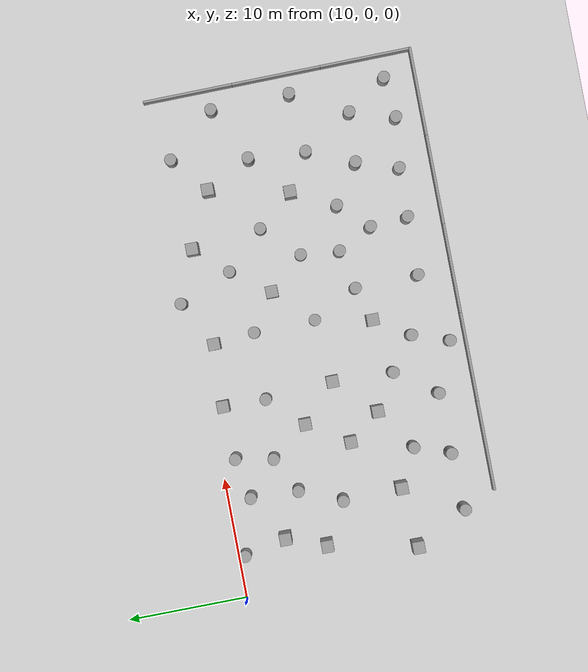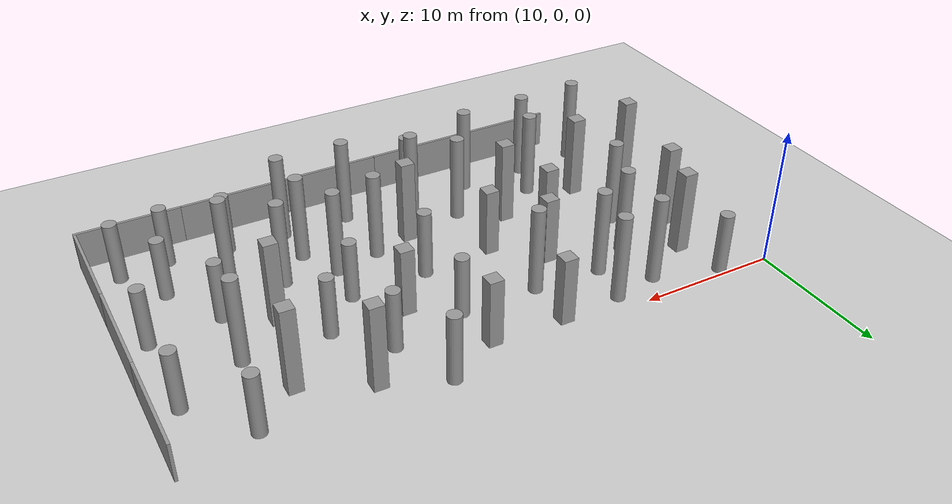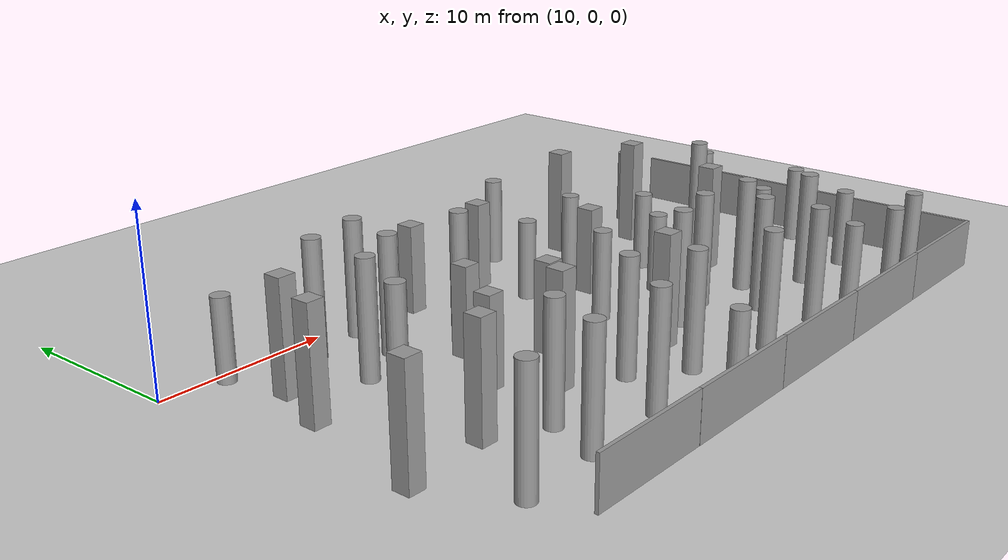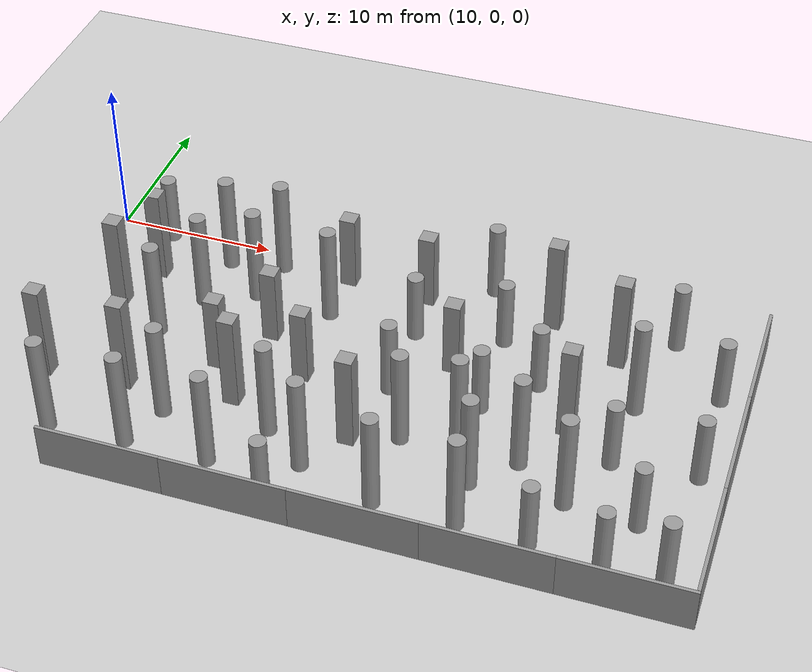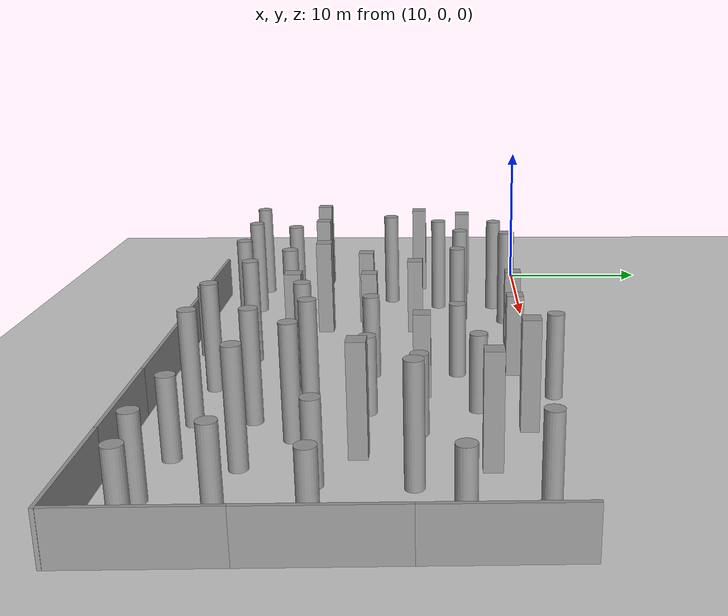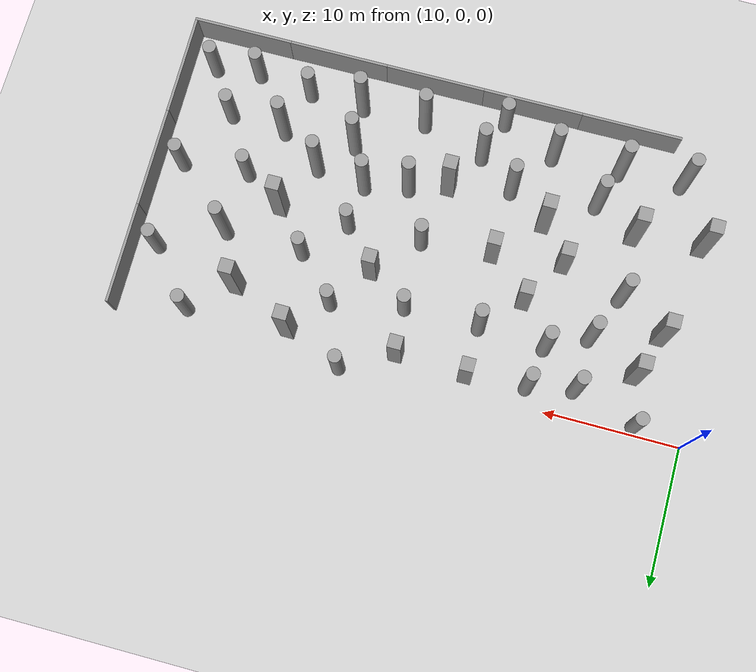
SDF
<sdf version="1.7">
 <world name="default">
  <model name="ground_plane">
   <static>1</static>
   <link name="link">
    <collision name="collision">
     <geometry><plane><normal>0 0 1</normal><size>400 400</size></plane></geometry>
     <surface><friction><ode><mu>100</mu><mu2>50</mu2></ode></friction></surface>
    </collision>
    <visual name="visual">
     <cast_shadows>0</cast_shadows>
     <geometry><plane><normal>0 0 1</normal><size>100 100</size></plane></geometry>
     <material>
      <script><uri>file://media/materials/scripts/gazebo.material</uri><name>Gazebo/Grey</name></script>
     </material>
    </visual>
   </link>
  </model>
  <model name="unit_cylinder_27_clone_8">
   <pose>36.8795 -3.70449 2.257 2e-06 0 -0.000726</pose>
   <link name="link">
    <inertial>
     <mass>1</mass>
     <inertia><ixx>0.145833</ixx><ixy>0</ixy><ixz>0</ixz><iyy>0.145833</iyy><iyz>0</iyz><izz>0.125</izz></inertia>
    </inertial>
    <collision name="collision">
     <geometry><cylinder><radius>0.5</radius><length>4.51407</length></cylinder></geometry>
    </collision>
    <visual name="visual">
     <geometry><cylinder><radius>0.5</radius><length>4.51407</length></cylinder></geometry>
     <material>
      <script><name>Gazebo/Grey</name><uri>file://media/materials/scripts/gazebo.material</uri></script>
     </material>
    </visual>
   </link>
  </model>
  <model name="unit_cylinder_27_clone_9">
   <pose>37.1597 -9.74418 2.257 2e-06 -0 -0.000727</pose>
   <link name="link">
    <inertial>
     <mass>1</mass>
     <inertia><ixx>0.145833</ixx><ixy>0</ixy><ixz>0</ixz><iyy>0.145833</iyy><iyz>0</iyz><izz>0.125</izz></inertia>
    </inertial>
    <collision name="collision">
     <geometry><cylinder><radius>0.5</radius><length>4.51407</length></cylinder></geometry>
    </collision>
    <visual name="visual">
     <geometry><cylinder><radius>0.5</radius><length>4.51407</length></cylinder></geometry>
     <material>
      <script><name>Gazebo/Grey</name><uri>file://media/materials/scripts/gazebo.material</uri></script>
     </material>
    </visual>
   </link>
  </model>
  <model name="unit_cylinder_27_clone_10">
   <pose>31.5623 -4.75748 2.257 2e-06 0 -0.000706</pose>
   <link name="link">
    <inertial>
     <mass>1</mass>
     <inertia><ixx>0.145833</ixx><ixy>0</ixy><ixz>0</ixz><iyy>0.145833</iyy><iyz>0</iyz><izz>0.125</izz></inertia>
    </inertial>
    <collision name="collision">
     <geometry><cylinder><radius>0.5</radius><length>4.51407</length></cylinder></geometry>
    </collision>
    <visual name="visual">
     <geometry><cylinder><radius>0.5</radius><length>4.51407</length></cylinder></geometry>
     <material>
      <script><name>Gazebo/Grey</name><uri>file://media/materials/scripts/gazebo.material</uri></script>
     </material>
    </visual>
   </link>
  </model>
  <model name="unit_cylinder_27_clone_11">
   <pose>39.891 -6.87466 2.257 2e-06 -0 -0.000742</pose>
   <link name="link">
    <inertial>
     <mass>1</mass>
     <inertia><ixx>0.145833</ixx><ixy>0</ixy><ixz>0</ixz><iyy>0.145833</iyy><iyz>0</iyz><izz>0.125</izz></inertia>
    </inertial>
    <collision name="collision">
     <geometry><cylinder><radius>0.5</radius><length>4.51407</length></cylinder></geometry>
    </collision>
    <visual name="visual">
     <geometry><cylinder><radius>0.5</radius><length>4.51407</length></cylinder></geometry>
     <material>
      <script><name>Gazebo/Grey</name><uri>file://media/materials/scripts/gazebo.material</uri></script>
     </material>
    </visual>
   </link>
  </model>
  <model name="unit_box_8_clone">
   <pose>39.2587 -1.07295 3.10477 0 1e-06 -0.011993</pose>
   <link name="link">
    <inertial>
     <mass>1</mass>
     <inertia>
      <ixx>0.166667</ixx>
      <ixy>0</ixy>
      <ixz>0</ixz>
      <iyy>0.166667</iyy>
      <iyz>0</iyz>
      <izz>0.166667</izz>
     </inertia>
    </inertial>
    <collision name="collision"><geometry><box><size>1 1 6.20954</size></box></geometry></collision>
    <visual name="visual">
     <geometry><box><size>1 1 6.20954</size></box></geometry>
     <material>
      <script><name>Gazebo/Grey</name><uri>file://media/materials/scripts/gazebo.material</uri></script>
     </material>
    </visual>
   </link>
  </model>
  <model name="unit_box_8_clone_0">
   <pose>43.8059 -3.23967 3.10477 -2e-06 5e-06 -0.008215</pose>
   <link name="link">
    <inertial>
     <mass>1</mass>
     <inertia>
      <ixx>0.166667</ixx>
      <ixy>0</ixy>
      <ixz>0</ixz>
      <iyy>0.166667</iyy>
      <iyz>0</iyz>
      <izz>0.166667</izz>
     </inertia>
    </inertial>
    <collision name="collision"><geometry><box><size>1 1 6.20954</size></box></geometry></collision>
    <visual name="visual">
     <geometry><box><size>1 1 6.20954</size></box></geometry>
     <material>
      <script><name>Gazebo/Grey</name><uri>file://media/materials/scripts/gazebo.material</uri></script>
     </material>
    </visual>
   </link>
  </model>
  <model name="unit_box_8_clone_3">
   <pose>42.3824 -9.85764 3.10477 0 -1e-06 -0.007014</pose>
   <link name="link">
    <inertial>
     <mass>1</mass>
     <inertia>
      <ixx>0.166667</ixx>
      <ixy>0</ixy>
      <ixz>0</ixz>
      <iyy>0.166667</iyy>
      <iyz>0</iyz>
      <izz>0.166667</izz>
     </inertia>
    </inertial>
    <collision name="collision"><geometry><box><size>1 1 6.20954</size></box></geometry></collision>
    <visual name="visual">
     <geometry><box><size>1 1 6.20954</size></box></geometry>
     <material>
      <script><name>Gazebo/Grey</name><uri>file://media/materials/scripts/gazebo.material</uri></script>
     </material>
    </visual>
   </link>
  </model>
  <model name="unit_box_8_clone_15">
   <pose>11.6994 -14.7229 3.10477 0 -5e-06 -0.008049</pose>
   <link name="link">
    <inertial>
     <mass>1</mass>
     <inertia>
      <ixx>0.166667</ixx>
      <ixy>0</ixy>
      <ixz>0</ixz>
      <iyy>0.166667</iyy>
      <iyz>0</iyz>
      <izz>0.166667</izz>
     </inertia>
    </inertial>
    <collision name="collision"><geometry><box><size>1 1 6.20954</size></box></geometry></collision>
    <visual name="visual">
     <geometry><box><size>1 1 6.20954</size></box></geometry>
     <material>
      <script><name>Gazebo/Grey</name><uri>file://media/materials/scripts/gazebo.material</uri></script>
     </material>
    </visual>
   </link>
  </model>
  <model name="unit_box_8_clone_16">
   <pose>16.7136 -14.2873 3.10477 2e-06 -5e-06 -0.009424</pose>
   <link name="link">
    <inertial>
     <mass>1</mass>
     <inertia>
      <ixx>0.166667</ixx>
      <ixy>0</ixy>
      <ixz>0</ixz>
      <iyy>0.166667</iyy>
      <iyz>0</iyz>
      <izz>0.166667</izz>
     </inertia>
    </inertial>
    <collision name="collision"><geometry><box><size>1 1 6.20954</size></box></geometry></collision>
    <visual name="visual">
     <geometry><box><size>1 1 6.20954</size></box></geometry>
     <material>
      <script><name>Gazebo/Grey</name><uri>file://media/materials/scripts/gazebo.material</uri></script>
     </material>
    </visual>
   </link>
  </model>
  <model name="unit_box_8_clone_17">
   <pose>23.2821 -13.5423 3.10477 1e-06 0 -0.007486</pose>
   <link name="link">
    <inertial>
     <mass>1</mass>
     <inertia>
      <ixx>0.166667</ixx>
      <ixy>0</ixy>
      <ixz>0</ixz>
      <iyy>0.166667</iyy>
      <iyz>0</iyz>
      <izz>0.166667</izz>
     </inertia>
    </inertial>
    <collision name="collision"><geometry><box><size>1 1 6.20954</size></box></geometry></collision>
    <visual name="visual">
     <geometry><box><size>1 1 6.20954</size></box></geometry>
     <material>
      <script><name>Gazebo/Grey</name><uri>file://media/materials/scripts/gazebo.material</uri></script>
     </material>
    </visual>
   </link>
  </model>
  <model name="unit_box_8_clone_18">
   <pose>30.7532 -14.5438 3.10477 2e-06 -5e-06 -0.009418</pose>
   <link name="link">
    <inertial>
     <mass>1</mass>
     <inertia>
      <ixx>0.166667</ixx>
      <ixy>0</ixy>
      <ixz>0</ixz>
      <iyy>0.166667</iyy>
      <iyz>0</iyz>
      <izz>0.166667</izz>
     </inertia>
    </inertial>
    <collision name="collision"><geometry><box><size>1 1 6.20954</size></box></geometry></collision>
    <visual name="visual">
     <geometry><box><size>1 1 6.20954</size></box></geometry>
     <material>
      <script><name>Gazebo/Grey</name><uri>file://media/materials/scripts/gazebo.material</uri></script>
     </material>
    </visual>
   </link>
  </model>
  <model name="unit_cylinder_17_clone_0">
   <pose>26.1992 -15.3901 3.23034 3e-06 -1e-06 0.007121</pose>
   <link name="link">
    <inertial>
     <mass>1</mass>
     <inertia><ixx>0.145833</ixx><ixy>0</ixy><ixz>0</ixz><iyy>0.145833</iyy><iyz>0</iyz><izz>0.125</izz></inertia>
    </inertial>
    <collision name="collision">
     <geometry><cylinder><radius>0.5</radius><length>6.46075</length></cylinder></geometry>
    </collision>
    <visual name="visual">
     <geometry><cylinder><radius>0.5</radius><length>6.46075</length></cylinder></geometry>
     <material>
      <script><name>Gazebo/Grey</name><uri>file://media/materials/scripts/gazebo.material</uri></script>
     </material>
    </visual>
   </link>
  </model>
  <model name="unit_cylinder_17_clone_1">
   <pose>19.8231 -15.8838 3.23034 3e-06 -1e-06 0.007124</pose>
   <link name="link">
    <inertial>
     <mass>1</mass>
     <inertia><ixx>0.145833</ixx><ixy>0</ixy><ixz>0</ixz><iyy>0.145833</iyy><iyz>0</iyz><izz>0.125</izz></inertia>
    </inertial>
    <collision name="collision">
     <geometry><cylinder><radius>0.5</radius><length>6.46075</length></cylinder></geometry>
    </collision>
    <visual name="visual">
     <geometry><cylinder><radius>0.5</radius><length>6.46075</length></cylinder></geometry>
     <material>
      <script><name>Gazebo/Grey</name><uri>file://media/materials/scripts/gazebo.material</uri></script>
     </material>
    </visual>
   </link>
  </model>
  <model name="unit_cylinder_17_clone_3">
   <pose>40.5461 -13.4182 3.23034 3e-06 -1e-06 0.007107</pose>
   <link name="link">
    <inertial>
     <mass>1</mass>
     <inertia><ixx>0.145833</ixx><ixy>0</ixy><ixz>0</ixz><iyy>0.145833</iyy><iyz>0</iyz><izz>0.125</izz></inertia>
    </inertial>
    <collision name="collision">
     <geometry><cylinder><radius>0.5</radius><length>6.46075</length></cylinder></geometry>
    </collision>
    <visual name="visual">
     <geometry><cylinder><radius>0.5</radius><length>6.46075</length></cylinder></geometry>
     <material>
      <script><name>Gazebo/Grey</name><uri>file://media/materials/scripts/gazebo.material</uri></script>
     </material>
    </visual>
   </link>
  </model>
  <model name="unit_cylinder_17_clone_4">
   <pose>14.0195 -19.0586 3.23034 3e-06 -1e-06 0.007104</pose>
   <link name="link">
    <inertial>
     <mass>1</mass>
     <inertia><ixx>0.145833</ixx><ixy>0</ixy><ixz>0</ixz><iyy>0.145833</iyy><iyz>0</iyz><izz>0.125</izz></inertia>
    </inertial>
    <collision name="collision">
     <geometry><cylinder><radius>0.5</radius><length>6.46075</length></cylinder></geometry>
    </collision>
    <visual name="visual">
     <geometry><cylinder><radius>0.5</radius><length>6.46075</length></cylinder></geometry>
     <material>
      <script><name>Gazebo/Grey</name><uri>file://media/materials/scripts/gazebo.material</uri></script>
     </material>
    </visual>
   </link>
  </model>
  <model name="unit_cylinder_17_clone_5">
   <pose>18.7577 -18.835 3.23034 3e-06 -1e-06 0.007073</pose>
   <link name="link">
    <inertial>
     <mass>1</mass>
     <inertia><ixx>0.145833</ixx><ixy>0</ixy><ixz>0</ixz><iyy>0.145833</iyy><iyz>0</iyz><izz>0.125</izz></inertia>
    </inertial>
    <collision name="collision">
     <geometry><cylinder><radius>0.5</radius><length>6.46075</length></cylinder></geometry>
    </collision>
    <visual name="visual">
     <geometry><cylinder><radius>0.5</radius><length>6.46075</length></cylinder></geometry>
     <material>
      <script><name>Gazebo/Grey</name><uri>file://media/materials/scripts/gazebo.material</uri></script>
     </material>
    </visual>
   </link>
  </model>
  <model name="unit_cylinder_17_clone_6">
   <pose>23.8153 -18.7641 3.23034 3e-06 -1e-06 0.007075</pose>
   <link name="link">
    <inertial>
     <mass>1</mass>
     <inertia><ixx>0.145833</ixx><ixy>0</ixy><ixz>0</ixz><iyy>0.145833</iyy><iyz>0</iyz><izz>0.125</izz></inertia>
    </inertial>
    <collision name="collision">
     <geometry><cylinder><radius>0.5</radius><length>6.46075</length></cylinder></geometry>
    </collision>
    <visual name="visual">
     <geometry><cylinder><radius>0.5</radius><length>6.46075</length></cylinder></geometry>
     <material>
      <script><name>Gazebo/Grey</name><uri>file://media/materials/scripts/gazebo.material</uri></script>
     </material>
    </visual>
   </link>
  </model>
  <model name="unit_cylinder_17_clone_7">
   <pose>28.9284 -17.4482 3.23034 3e-06 -1e-06 0.00708</pose>
   <link name="link">
    <inertial>
     <mass>1</mass>
     <inertia><ixx>0.145833</ixx><ixy>0</ixy><ixz>0</ixz><iyy>0.145833</iyy><iyz>0</iyz><izz>0.125</izz></inertia>
    </inertial>
    <collision name="collision">
     <geometry><cylinder><radius>0.5</radius><length>6.46075</length></cylinder></geometry>
    </collision>
    <visual name="visual">
     <geometry><cylinder><radius>0.5</radius><length>6.46075</length></cylinder></geometry>
     <material>
      <script><name>Gazebo/Grey</name><uri>file://media/materials/scripts/gazebo.material</uri></script>
     </material>
    </visual>
   </link>
  </model>
  <model name="unit_cylinder_17_clone_8">
   <pose>33.688 -18.8972 3.23034 3e-06 -1e-06 0.007062</pose>
   <link name="link">
    <inertial>
     <mass>1</mass>
     <inertia><ixx>0.145833</ixx><ixy>0</ixy><ixz>0</ixz><iyy>0.145833</iyy><iyz>0</iyz><izz>0.125</izz></inertia>
    </inertial>
    <collision name="collision">
     <geometry><cylinder><radius>0.5</radius><length>6.46075</length></cylinder></geometry>
    </collision>
    <visual name="visual">
     <geometry><cylinder><radius>0.5</radius><length>6.46075</length></cylinder></geometry>
     <material>
      <script><name>Gazebo/Grey</name><uri>file://media/materials/scripts/gazebo.material</uri></script>
     </material>
    </visual>
   </link>
  </model>
  <model name="unit_cylinder_17_clone_9">
   <pose>33.5789 -13.6377 3.23034 3e-06 -1e-06 0.007064</pose>
   <link name="link">
    <inertial>
     <mass>1</mass>
     <inertia><ixx>0.145833</ixx><ixy>0</ixy><ixz>0</ixz><iyy>0.145833</iyy><iyz>0</iyz><izz>0.125</izz></inertia>
    </inertial>
    <collision name="collision">
     <geometry><cylinder><radius>0.5</radius><length>6.46075</length></cylinder></geometry>
    </collision>
    <visual name="visual">
     <geometry><cylinder><radius>0.5</radius><length>6.46075</length></cylinder></geometry>
     <material>
      <script><name>Gazebo/Grey</name><uri>file://media/materials/scripts/gazebo.material</uri></script>
     </material>
    </visual>
   </link>
  </model>
  <model name="unit_cylinder_17_clone_10">
   <pose>38.3088 -15.8097 3.23034 3e-06 -1e-06 0.007047</pose>
   <link name="link">
    <inertial>
     <mass>1</mass>
     <inertia><ixx>0.145833</ixx><ixy>0</ixy><ixz>0</ixz><iyy>0.145833</iyy><iyz>0</iyz><izz>0.125</izz></inertia>
    </inertial>
    <collision name="collision">
     <geometry><cylinder><radius>0.5</radius><length>6.46075</length></cylinder></geometry>
    </collision>
    <visual name="visual">
     <geometry><cylinder><radius>0.5</radius><length>6.46075</length></cylinder></geometry>
     <material>
      <script><name>Gazebo/Grey</name><uri>file://media/materials/scripts/gazebo.material</uri></script>
     </material>
    </visual>
   </link>
  </model>
  <model name="unit_cylinder_17_clone_2">
   <pose>36.8202 -12.9403 3.23034 3e-06 -1e-06 0.007012</pose>
   <link name="link">
    <inertial>
     <mass>1</mass>
     <inertia><ixx>0.145833</ixx><ixy>0</ixy><ixz>0</ixz><iyy>0.145833</iyy><iyz>0</iyz><izz>0.125</izz></inertia>
    </inertial>
    <collision name="collision">
     <geometry><cylinder><radius>0.5</radius><length>6.46075</length></cylinder></geometry>
    </collision>
    <visual name="visual">
     <geometry><cylinder><radius>0.5</radius><length>6.46075</length></cylinder></geometry>
     <material>
      <script><name>Gazebo/Grey</name><uri>file://media/materials/scripts/gazebo.material</uri></script>
     </material>
    </visual>
   </link>
  </model>
  <model name="unit_cylinder_17_clone_11">
   <pose>38.5353 -18.9509 3.23034 3e-06 -1e-06 0.00717</pose>
   <link name="link">
    <inertial>
     <mass>1</mass>
     <inertia><ixx>0.145833</ixx><ixy>0</ixy><ixz>0</ixz><iyy>0.145833</iyy><iyz>0</iyz><izz>0.125</izz></inertia>
    </inertial>
    <collision name="collision">
     <geometry><cylinder><radius>0.5</radius><length>6.46075</length></cylinder></geometry>
    </collision>
    <visual name="visual">
     <geometry><cylinder><radius>0.5</radius><length>6.46075</length></cylinder></geometry>
     <material>
      <script><name>Gazebo/Grey</name><uri>file://media/materials/scripts/gazebo.material</uri></script>
     </material>
    </visual>
   </link>
  </model>
  <model name="unit_cylinder_17_clone_12">
   <pose>43.7372 -15.5968 3.23034 3e-06 -1e-06 0.007173</pose>
   <link name="link">
    <inertial>
     <mass>1</mass>
     <inertia><ixx>0.145833</ixx><ixy>0</ixy><ixz>0</ixz><iyy>0.145833</iyy><iyz>0</iyz><izz>0.125</izz></inertia>
    </inertial>
    <collision name="collision">
     <geometry><cylinder><radius>0.5</radius><length>6.46075</length></cylinder></geometry>
    </collision>
    <visual name="visual">
     <geometry><cylinder><radius>0.5</radius><length>6.46075</length></cylinder></geometry>
     <material>
      <script><name>Gazebo/Grey</name><uri>file://media/materials/scripts/gazebo.material</uri></script>
     </material>
    </visual>
   </link>
  </model>
  <model name="unit_cylinder_17_clone_13">
   <pose>45.7275 -6.98851 3.23034 3e-06 -1e-06 0.007178</pose>
   <link name="link">
    <inertial>
     <mass>1</mass>
     <inertia><ixx>0.145833</ixx><ixy>0</ixy><ixz>0</ixz><iyy>0.145833</iyy><iyz>0</iyz><izz>0.125</izz></inertia>
    </inertial>
    <collision name="collision">
     <geometry><cylinder><radius>0.5</radius><length>6.46075</length></cylinder></geometry>
    </collision>
    <visual name="visual">
     <geometry><cylinder><radius>0.5</radius><length>6.46075</length></cylinder></geometry>
     <material>
      <script><name>Gazebo/Grey</name><uri>file://media/materials/scripts/gazebo.material</uri></script>
     </material>
    </visual>
   </link>
  </model>
  <model name="unit_cylinder_17_clone_14">
   <pose>25.9964 -4.68182 3.23034 3e-06 -1e-06 0.007158</pose>
   <link name="link">
    <inertial>
     <mass>1</mass>
     <inertia><ixx>0.145833</ixx><ixy>0</ixy><ixz>0</ixz><iyy>0.145833</iyy><iyz>0</iyz><izz>0.125</izz></inertia>
    </inertial>
    <collision name="collision">
     <geometry><cylinder><radius>0.5</radius><length>6.46075</length></cylinder></geometry>
    </collision>
    <visual name="visual">
     <geometry><cylinder><radius>0.5</radius><length>6.46075</length></cylinder></geometry>
     <material>
      <script><name>Gazebo/Grey</name><uri>file://media/materials/scripts/gazebo.material</uri></script>
     </material>
    </visual>
   </link>
  </model>
  <model name="grey_wall_clone_0">
   <static>1</static>
   <link name="link">
    <pose>0 0 1.4 0 -0 0</pose>
    <collision name="collision"><geometry><box><size>7.5 0.2 2.8</size></box></geometry></collision>
    <visual name="visual">
     <cast_shadows>0</cast_shadows>
     <geometry><box><size>7.5 0.2 2.8</size></box></geometry>
     <material>
      <script>
       <uri>model://grey_wall/materials/scripts</uri>
       <uri>model://grey_wall/materials/textures</uri>
       <name>vrc/grey_wall</name>
      </script>
     </material>
    </visual>
   </link>
   <pose>18.7458 -21.8498 0 0 -0 0</pose>
  </model>
  <model name="grey_wall_clone_1">
   <static>1</static>
   <link name="link">
    <pose>0 0 1.4 0 -0 0</pose>
    <collision name="collision"><geometry><box><size>7.5 0.2 2.8</size></box></geometry></collision>
    <visual name="visual">
     <cast_shadows>0</cast_shadows>
     <geometry><box><size>7.5 0.2 2.8</size></box></geometry>
     <material>
      <script>
       <uri>model://grey_wall/materials/scripts</uri>
       <uri>model://grey_wall/materials/textures</uri>
       <name>vrc/grey_wall</name>
      </script>
     </material>
    </visual>
   </link>
   <pose>26.227 -21.8579 0 0 -0 0</pose>
  </model>
  <model name="grey_wall_clone_2">
   <static>1</static>
   <link name="link">
    <pose>0 0 1.4 0 -0 0</pose>
    <collision name="collision"><geometry><box><size>7.5 0.2 2.8</size></box></geometry></collision>
    <visual name="visual">
     <cast_shadows>0</cast_shadows>
     <geometry><box><size>7.5 0.2 2.8</size></box></geometry>
     <material>
      <script>
       <uri>model://grey_wall/materials/scripts</uri>
       <uri>model://grey_wall/materials/textures</uri>
       <name>vrc/grey_wall</name>
      </script>
     </material>
    </visual>
   </link>
   <pose>33.693 -21.8618 0 0 -0 0</pose>
  </model>
  <model name="grey_wall_clone_3">
   <static>1</static>
   <link name="link">
    <pose>0 0 1.4 0 -0 0</pose>
    <collision name="collision"><geometry><box><size>7.5 0.2 2.8</size></box></geometry></collision>
    <visual name="visual">
     <cast_shadows>0</cast_shadows>
     <geometry><box><size>7.5 0.2 2.8</size></box></geometry>
     <material>
      <script>
       <uri>model://grey_wall/materials/scripts</uri>
       <uri>model://grey_wall/materials/textures</uri>
       <name>vrc/grey_wall</name>
      </script>
     </material>
    </visual>
   </link>
   <pose>41.1808 -21.8627 0 0 -0 0</pose>
  </model>
  <model name="grey_wall_clone_4">
   <static>1</static>
   <link name="link">
    <pose>0 0 1.4 0 -0 0</pose>
    <collision name="collision"><geometry><box><size>7.5 0.2 2.8</size></box></geometry></collision>
    <visual name="visual">
     <cast_shadows>0</cast_shadows>
     <geometry><box><size>7.5 0.2 2.8</size></box></geometry>
     <material>
      <script>
       <uri>model://grey_wall/materials/scripts</uri>
       <uri>model://grey_wall/materials/textures</uri>
       <name>vrc/grey_wall</name>
      </script>
     </material>
    </visual>
   </link>
   <pose>48.6085 -21.8641 0 0 -0 0</pose>
  </model>
  <model name="grey_wall_clone_6">
   <static>1</static>
   <link name="link">
    <pose>0 0 1.4 0 -0 0</pose>
    <collision name="collision"><geometry><box><size>7.5 0.2 2.8</size></box></geometry></collision>
    <visual name="visual">
     <cast_shadows>0</cast_shadows>
     <geometry><box><size>7.5 0.2 2.8</size></box></geometry>
     <material>
      <script>
       <uri>model://grey_wall/materials/scripts</uri>
       <uri>model://grey_wall/materials/textures</uri>
       <name>vrc/grey_wall</name>
      </script>
     </material>
    </visual>
   </link>
   <pose>52.2126 -18.0115 0 0 0 -1.56033</pose>
  </model>
  <model name="grey_wall_clone_6_clone">
   <static>1</static>
   <link name="link">
    <pose>0 0 1.4 0 -0 0</pose>
    <collision name="collision"><geometry><box><size>7.5 0.2 2.8</size></box></geometry></collision>
    <visual name="visual">
     <cast_shadows>0</cast_shadows>
     <geometry><box><size>7.5 0.2 2.8</size></box></geometry>
     <material>
      <script>
       <uri>model://grey_wall/materials/scripts</uri>
       <uri>model://grey_wall/materials/textures</uri>
       <name>vrc/grey_wall</name>
      </script>
     </material>
    </visual>
   </link>
   <pose>52.1345 -10.5567 0 0 0 -1.56033</pose>
  </model>
  <model name="grey_wall_clone_6_clone_0">
   <static>1</static>
   <link name="link">
    <pose>0 0 1.4 0 -0 0</pose>
    <collision name="collision"><geometry><box><size>7.5 0.2 2.8</size></box></geometry></collision>
    <visual name="visual">
     <cast_shadows>0</cast_shadows>
     <geometry><box><size>7.5 0.2 2.8</size></box></geometry>
     <material>
      <script>
       <uri>model://grey_wall/materials/scripts</uri>
       <uri>model://grey_wall/materials/textures</uri>
       <name>vrc/grey_wall</name>
      </script>
     </material>
    </visual>
   </link>
   <pose>52.0596 -3.06757 0 0 0 -1.56033</pose>
  </model>
  <model name="unit_cylinder_27_clone_7_clone">
   <pose>46.8503 -0.691052 2.257 2e-06 0 -0.00073</pose>
   <link name="link">
    <inertial>
     <mass>1</mass>
     <inertia><ixx>0.145833</ixx><ixy>0</ixy><ixz>0</ixz><iyy>0.145833</iyy><iyz>0</iyz><izz>0.125</izz></inertia>
    </inertial>
    <collision name="collision">
     <geometry><cylinder><radius>0.5</radius><length>4.51407</length></cylinder></geometry>
    </collision>
    <visual name="visual">
     <geometry><cylinder><radius>0.5</radius><length>4.51407</length></cylinder></geometry>
     <material>
      <script><name>Gazebo/Grey</name><uri>file://media/materials/scripts/gazebo.material</uri></script>
     </material>
    </visual>
   </link>
  </model>
  <model name="unit_cylinder_27_clone_7_clone_0">
   <pose>50.2933 -4.71385 2.257 2e-06 -0 -0.000732</pose>
   <link name="link">
    <inertial>
     <mass>1</mass>
     <inertia><ixx>0.145833</ixx><ixy>0</ixy><ixz>0</ixz><iyy>0.145833</iyy><iyz>0</iyz><izz>0.125</izz></inertia>
    </inertial>
    <collision name="collision">
     <geometry><cylinder><radius>0.5</radius><length>4.51407</length></cylinder></geometry>
    </collision>
    <visual name="visual">
     <geometry><cylinder><radius>0.5</radius><length>4.51407</length></cylinder></geometry>
     <material>
      <script><name>Gazebo/Grey</name><uri>file://media/materials/scripts/gazebo.material</uri></script>
     </material>
    </visual>
   </link>
  </model>
  <model name="unit_cylinder_27_clone_7_clone_1">
   <pose>45.45 -11.756 2.257 2e-06 0 -0.000718</pose>
   <link name="link">
    <inertial>
     <mass>1</mass>
     <inertia><ixx>0.145833</ixx><ixy>0</ixy><ixz>0</ixz><iyy>0.145833</iyy><iyz>0</iyz><izz>0.125</izz></inertia>
    </inertial>
    <collision name="collision">
     <geometry><cylinder><radius>0.5</radius><length>4.51407</length></cylinder></geometry>
    </collision>
    <visual name="visual">
     <geometry><cylinder><radius>0.5</radius><length>4.51407</length></cylinder></geometry>
     <material>
      <script><name>Gazebo/Grey</name><uri>file://media/materials/scripts/gazebo.material</uri></script>
     </material>
    </visual>
   </link>
  </model>
  <model name="unit_cylinder_27_clone_7_clone_2">
   <pose>50.3939 -11.3096 2.257 2e-06 -0 -0.000736</pose>
   <link name="link">
    <inertial>
     <mass>1</mass>
     <inertia><ixx>0.145833</ixx><ixy>0</ixy><ixz>0</ixz><iyy>0.145833</iyy><iyz>0</iyz><izz>0.125</izz></inertia>
    </inertial>
    <collision name="collision">
     <geometry><cylinder><radius>0.5</radius><length>4.51407</length></cylinder></geometry>
    </collision>
    <visual name="visual">
     <geometry><cylinder><radius>0.5</radius><length>4.51407</length></cylinder></geometry>
     <material>
      <script><name>Gazebo/Grey</name><uri>file://media/materials/scripts/gazebo.material</uri></script>
     </material>
    </visual>
   </link>
  </model>
  <model name="unit_cylinder_27_clone_7_clone_3">
   <pose>47.9655 -15.9031 2.257 2e-06 0 -0.00074</pose>
   <link name="link">
    <inertial>
     <mass>1</mass>
     <inertia><ixx>0.145833</ixx><ixy>0</ixy><ixz>0</ixz><iyy>0.145833</iyy><iyz>0</iyz><izz>0.125</izz></inertia>
    </inertial>
    <collision name="collision">
     <geometry><cylinder><radius>0.5</radius><length>4.51407</length></cylinder></geometry>
    </collision>
    <visual name="visual">
     <geometry><cylinder><radius>0.5</radius><length>4.51407</length></cylinder></geometry>
     <material>
      <script><name>Gazebo/Grey</name><uri>file://media/materials/scripts/gazebo.material</uri></script>
     </material>
    </visual>
   </link>
  </model>
  <model name="unit_cylinder_27_clone_7_clone_4">
   <pose>42.6609 -19.1004 2.257 2e-06 0 -0.000735</pose>
   <link name="link">
    <inertial>
     <mass>1</mass>
     <inertia><ixx>0.145833</ixx><ixy>0</ixy><ixz>0</ixz><iyy>0.145833</iyy><iyz>0</iyz><izz>0.125</izz></inertia>
    </inertial>
    <collision name="collision">
     <geometry><cylinder><radius>0.5</radius><length>4.51407</length></cylinder></geometry>
    </collision>
    <visual name="visual">
     <geometry><cylinder><radius>0.5</radius><length>4.51407</length></cylinder></geometry>
     <material>
      <script><name>Gazebo/Grey</name><uri>file://media/materials/scripts/gazebo.material</uri></script>
     </material>
    </visual>
   </link>
  </model>
  <model name="unit_cylinder_27_clone_7_clone_5">
   <pose>46.8362 -19.6099 2.257 2e-06 -0 -0.000742</pose>
   <link name="link">
    <inertial>
     <mass>1</mass>
     <inertia><ixx>0.145833</ixx><ixy>0</ixy><ixz>0</ixz><iyy>0.145833</iyy><iyz>0</iyz><izz>0.125</izz></inertia>
    </inertial>
    <collision name="collision">
     <geometry><cylinder><radius>0.5</radius><length>4.51407</length></cylinder></geometry>
    </collision>
    <visual name="visual">
     <geometry><cylinder><radius>0.5</radius><length>4.51407</length></cylinder></geometry>
     <material>
      <script><name>Gazebo/Grey</name><uri>file://media/materials/scripts/gazebo.material</uri></script>
     </material>
    </visual>
   </link>
  </model>
  <model name="unit_cylinder_27_clone_7_clone_6">
   <pose>50.2143 -19.2414 2.257 2e-06 0 -0.000741</pose>
   <link name="link">
    <inertial>
     <mass>1</mass>
     <inertia><ixx>0.145833</ixx><ixy>0</ixy><ixz>0</ixz><iyy>0.145833</iyy><iyz>0</iyz><izz>0.125</izz></inertia>
    </inertial>
    <collision name="collision">
     <geometry><cylinder><radius>0.5</radius><length>4.51407</length></cylinder></geometry>
    </collision>
    <visual name="visual">
     <geometry><cylinder><radius>0.5</radius><length>4.51407</length></cylinder></geometry>
     <material>
      <script><name>Gazebo/Grey</name><uri>file://media/materials/scripts/gazebo.material</uri></script>
     </material>
    </visual>
   </link>
  </model>
  <model name="unit_cylinder_27_clone_7_clone_12">
   <pose>27.8817 -20.543 2.257 2e-06 -0 -0.000752</pose>
   <link name="link">
    <inertial>
     <mass>1</mass>
     <inertia><ixx>0.145833</ixx><ixy>0</ixy><ixz>0</ixz><iyy>0.145833</iyy><iyz>0</iyz><izz>0.125</izz></inertia>
    </inertial>
    <collision name="collision">
     <geometry><cylinder><radius>0.5</radius><length>4.51407</length></cylinder></geometry>
    </collision>
    <visual name="visual">
     <geometry><cylinder><radius>0.5</radius><length>4.51407</length></cylinder></geometry>
     <material>
      <script><name>Gazebo/Grey</name><uri>file://media/materials/scripts/gazebo.material</uri></script>
     </material>
    </visual>
   </link>
  </model>
  <model name="unit_cylinder_11_clone_7">
   <pose>35.0248 0.701628 2.51349 2e-06 0 -0.000585</pose>
   <link name="link">
    <inertial>
     <mass>1</mass>
     <inertia><ixx>0.145833</ixx><ixy>0</ixy><ixz>0</ixz><iyy>0.145833</iyy><iyz>0</iyz><izz>0.125</izz></inertia>
    </inertial>
    <collision name="collision">
     <geometry><cylinder><radius>0.5</radius><length>5.02706</length></cylinder></geometry>
    </collision>
    <visual name="visual">
     <geometry><cylinder><radius>0.5</radius><length>5.02706</length></cylinder></geometry>
     <material>
      <script><name>Gazebo/Grey</name><uri>file://media/materials/scripts/gazebo.material</uri></script>
     </material>
    </visual>
   </link>
  </model>
  <model name="unit_cylinder_11_clone_8">
   <pose>31.6399 -9.88004 2.51349 2e-06 0 -0.000586</pose>
   <link name="link">
    <inertial>
     <mass>1</mass>
     <inertia><ixx>0.145833</ixx><ixy>0</ixy><ixz>0</ixz><iyy>0.145833</iyy><iyz>0</iyz><izz>0.125</izz></inertia>
    </inertial>
    <collision name="collision">
     <geometry><cylinder><radius>0.5</radius><length>5.02706</length></cylinder></geometry>
    </collision>
    <visual name="visual">
     <geometry><cylinder><radius>0.5</radius><length>5.02706</length></cylinder></geometry>
     <material>
      <script><name>Gazebo/Grey</name><uri>file://media/materials/scripts/gazebo.material</uri></script>
     </material>
    </visual>
   </link>
  </model>
  <model name="unit_box_1_clone_4_clone_1">
   <pose>31.2585 -1.33097 2.48504 2e-06 -0 4.7e-05</pose>
   <link name="link">
    <inertial>
     <mass>1</mass>
     <inertia>
      <ixx>0.166667</ixx>
      <ixy>0</ixy>
      <ixz>0</ixz>
      <iyy>0.166667</iyy>
      <iyz>0</iyz>
      <izz>0.166667</izz>
     </inertia>
    </inertial>
    <collision name="collision"><geometry><box><size>1 1 4.97009</size></box></geometry></collision>
    <visual name="visual">
     <geometry><box><size>1 1 4.97009</size></box></geometry>
     <material>
      <script><name>Gazebo/Grey</name><uri>file://media/materials/scripts/gazebo.material</uri></script>
     </material>
    </visual>
   </link>
  </model>
  <model name="unit_box_1_clone_4_clone_4">
   <pose>26.0523 -1.09252 2.48504 2e-06 0 -0.000608</pose>
   <link name="link">
    <inertial>
     <mass>1</mass>
     <inertia>
      <ixx>0.166667</ixx>
      <ixy>0</ixy>
      <ixz>0</ixz>
      <iyy>0.166667</iyy>
      <iyz>0</iyz>
      <izz>0.166667</izz>
     </inertia>
    </inertial>
    <collision name="collision"><geometry><box><size>1 1 4.97009</size></box></geometry></collision>
    <visual name="visual">
     <geometry><box><size>1 1 4.97009</size></box></geometry>
     <material>
      <script><name>Gazebo/Grey</name><uri>file://media/materials/scripts/gazebo.material</uri></script>
     </material>
    </visual>
   </link>
  </model>
  <model name="unit_box_1_clone_4_clone_5">
   <pose>26.3804 -10.3417 2.48504 2e-06 -0 0.000135</pose>
   <link name="link">
    <inertial>
     <mass>1</mass>
     <inertia>
      <ixx>0.166667</ixx>
      <ixy>0</ixy>
      <ixz>0</ixz>
      <iyy>0.166667</iyy>
      <iyz>0</iyz>
      <izz>0.166667</izz>
     </inertia>
    </inertial>
    <collision name="collision"><geometry><box><size>1 1 4.97009</size></box></geometry></collision>
    <visual name="visual">
     <geometry><box><size>1 1 4.97009</size></box></geometry>
     <material>
      <script><name>Gazebo/Grey</name><uri>file://media/materials/scripts/gazebo.material</uri></script>
     </material>
    </visual>
   </link>
  </model>
  <model name="unit_box_1_clone_4_clone_6">
   <pose>34.5988 -6.82337 2.48504 2e-06 -0 0.000969</pose>
   <link name="link">
    <inertial>
     <mass>1</mass>
     <inertia>
      <ixx>0.166667</ixx>
      <ixy>0</ixy>
      <ixz>0</ixz>
      <iyy>0.166667</iyy>
      <iyz>0</iyz>
      <izz>0.166667</izz>
     </inertia>
    </inertial>
    <collision name="collision"><geometry><box><size>1 1 4.97009</size></box></geometry></collision>
    <visual name="visual">
     <geometry><box><size>1 1 4.97009</size></box></geometry>
     <material>
      <script><name>Gazebo/Grey</name><uri>file://media/materials/scripts/gazebo.material</uri></script>
     </material>
    </visual>
   </link>
  </model>
  <model name="unit_box_1_clone_4_clone_7">
   <pose>23.3342 -7.47377 2.48504 2e-06 -0 0.001479</pose>
   <link name="link">
    <inertial>
     <mass>1</mass>
     <inertia>
      <ixx>0.166667</ixx>
      <ixy>0</ixy>
      <ixz>0</ixz>
      <iyy>0.166667</iyy>
      <iyz>0</iyz>
      <izz>0.166667</izz>
     </inertia>
    </inertial>
    <collision name="collision"><geometry><box><size>1 1 4.97009</size></box></geometry></collision>
    <visual name="visual">
     <geometry><box><size>1 1 4.97009</size></box></geometry>
     <material>
      <script><name>Gazebo/Grey</name><uri>file://media/materials/scripts/gazebo.material</uri></script>
     </material>
    </visual>
   </link>
  </model>
  <model name="unit_box_1_clone_4_clone_8">
   <pose>21.1799 -10.8918 2.48504 2e-06 -0 0.00089</pose>
   <link name="link">
    <inertial>
     <mass>1</mass>
     <inertia>
      <ixx>0.166667</ixx>
      <ixy>0</ixy>
      <ixz>0</ixz>
      <iyy>0.166667</iyy>
      <iyz>0</iyz>
      <izz>0.166667</izz>
     </inertia>
    </inertial>
    <collision name="collision"><geometry><box><size>1 1 4.97009</size></box></geometry></collision>
    <visual name="visual">
     <geometry><box><size>1 1 4.97009</size></box></geometry>
     <material>
      <script><name>Gazebo/Grey</name><uri>file://media/materials/scripts/gazebo.material</uri></script>
     </material>
    </visual>
   </link>
  </model>
  <model name="unit_cylinder_17_clone_14_clone">
   <pose>21.6364 -1.29905 3.23034 3e-06 -1e-06 0.007158</pose>
   <link name="link">
    <inertial>
     <mass>1</mass>
     <inertia><ixx>0.145833</ixx><ixy>0</ixy><ixz>0</ixz><iyy>0.145833</iyy><iyz>0</iyz><izz>0.125</izz></inertia>
    </inertial>
    <collision name="collision">
     <geometry><cylinder><radius>0.5</radius><length>6.46075</length></cylinder></geometry>
    </collision>
    <visual name="visual">
     <geometry><cylinder><radius>0.5</radius><length>6.46075</length></cylinder></geometry>
     <material>
      <script><name>Gazebo/Grey</name><uri>file://media/materials/scripts/gazebo.material</uri></script>
     </material>
    </visual>
   </link>
  </model>
  <model name="unit_cylinder_17_clone_14_clone_0">
   <pose>21.0561 -4.40505 3.23034 3e-06 -1e-06 0.007151</pose>
   <link name="link">
    <inertial>
     <mass>1</mass>
     <inertia><ixx>0.145833</ixx><ixy>0</ixy><ixz>0</ixz><iyy>0.145833</iyy><iyz>0</iyz><izz>0.125</izz></inertia>
    </inertial>
    <collision name="collision">
     <geometry><cylinder><radius>0.5</radius><length>6.46075</length></cylinder></geometry>
    </collision>
    <visual name="visual">
     <geometry><cylinder><radius>0.5</radius><length>6.46075</length></cylinder></geometry>
     <material>
      <script><name>Gazebo/Grey</name><uri>file://media/materials/scripts/gazebo.material</uri></script>
     </material>
    </visual>
   </link>
  </model>
  <model name="unit_cylinder_17_clone_14_clone_5">
   <pose>18.2708 -1.94819 3.23034 3e-06 -1e-06 0.007124</pose>
   <link name="link">
    <inertial>
     <mass>1</mass>
     <inertia><ixx>0.145833</ixx><ixy>0</ixy><ixz>0</ixz><iyy>0.145833</iyy><iyz>0</iyz><izz>0.125</izz></inertia>
    </inertial>
    <collision name="collision">
     <geometry><cylinder><radius>0.5</radius><length>6.46075</length></cylinder></geometry>
    </collision>
    <visual name="visual">
     <geometry><cylinder><radius>0.5</radius><length>6.46075</length></cylinder></geometry>
     <material>
      <script><name>Gazebo/Grey</name><uri>file://media/materials/scripts/gazebo.material</uri></script>
     </material>
    </visual>
   </link>
  </model>
  <model name="unit_cylinder_17_clone_14_clone_6">
   <pose>18.094 -5.90027 3.23034 3e-06 -1e-06 0.007114</pose>
   <link name="link">
    <inertial>
     <mass>1</mass>
     <inertia><ixx>0.145833</ixx><ixy>0</ixy><ixz>0</ixz><iyy>0.145833</iyy><iyz>0</iyz><izz>0.125</izz></inertia>
    </inertial>
    <collision name="collision">
     <geometry><cylinder><radius>0.5</radius><length>6.46075</length></cylinder></geometry>
    </collision>
    <visual name="visual">
     <geometry><cylinder><radius>0.5</radius><length>6.46075</length></cylinder></geometry>
     <material>
      <script><name>Gazebo/Grey</name><uri>file://media/materials/scripts/gazebo.material</uri></script>
     </material>
    </visual>
   </link>
  </model>
  <model name="unit_cylinder_17_clone_14_clone_1">
   <pose>16.5974 -9.37216 3.23034 3e-06 -1e-06 0.007088</pose>
   <link name="link">
    <inertial>
     <mass>1</mass>
     <inertia><ixx>0.145833</ixx><ixy>0</ixy><ixz>0</ixz><iyy>0.145833</iyy><iyz>0</iyz><izz>0.125</izz></inertia>
    </inertial>
    <collision name="collision">
     <geometry><cylinder><radius>0.5</radius><length>6.46075</length></cylinder></geometry>
    </collision>
    <visual name="visual">
     <geometry><cylinder><radius>0.5</radius><length>6.46075</length></cylinder></geometry>
     <material>
      <script><name>Gazebo/Grey</name><uri>file://media/materials/scripts/gazebo.material</uri></script>
     </material>
    </visual>
   </link>
  </model>
  <model name="unit_cylinder_27_clone_4_clone_2_clone_0">
   <pose>13.5963 -0.582332 2.257 2e-06 -0 -0.000771</pose>
   <link name="link">
    <inertial>
     <mass>1</mass>
     <inertia><ixx>0.145833</ixx><ixy>0</ixy><ixz>0</ixz><iyy>0.145833</iyy><iyz>0</iyz><izz>0.125</izz></inertia>
    </inertial>
    <collision name="collision">
     <geometry><cylinder><radius>0.5</radius><length>4.51407</length></cylinder></geometry>
    </collision>
    <visual name="visual">
     <geometry><cylinder><radius>0.5</radius><length>4.51407</length></cylinder></geometry>
     <material>
      <script><name>Gazebo/Grey</name><uri>file://media/materials/scripts/gazebo.material</uri></script>
     </material>
    </visual>
   </link>
  </model>
  <model name="unit_box_8_clone_15_clone">
   <pose>14.4138 -4.11079 3.10477 0 1e-06 -0.008207</pose>
   <link name="link">
    <inertial>
     <mass>1</mass>
     <inertia>
      <ixx>0.166667</ixx>
      <ixy>0</ixy>
      <ixz>0</ixz>
      <iyy>0.166667</iyy>
      <iyz>0</iyz>
      <izz>0.166667</izz>
     </inertia>
    </inertial>
    <collision name="collision"><geometry><box><size>1 1 6.20954</size></box></geometry></collision>
    <visual name="visual">
     <geometry><box><size>1 1 6.20954</size></box></geometry>
     <material>
      <script><name>Gazebo/Grey</name><uri>file://media/materials/scripts/gazebo.material</uri></script>
     </material>
    </visual>
   </link>
  </model>
  <model name="unit_box_8_clone_15_clone_0">
   <pose>13.1995 -7.38374 3.10477 2e-06 -5e-06 -0.007316</pose>
   <link name="link">
    <inertial>
     <mass>1</mass>
     <inertia>
      <ixx>0.166667</ixx>
      <ixy>0</ixy>
      <ixz>0</ixz>
      <iyy>0.166667</iyy>
      <iyz>0</iyz>
      <izz>0.166667</izz>
     </inertia>
    </inertial>
    <collision name="collision"><geometry><box><size>1 1 6.20954</size></box></geometry></collision>
    <visual name="visual">
     <geometry><box><size>1 1 6.20954</size></box></geometry>
     <material>
      <script><name>Gazebo/Grey</name><uri>file://media/materials/scripts/gazebo.material</uri></script>
     </material>
    </visual>
   </link>
  </model>
 </world>
</sdf>
